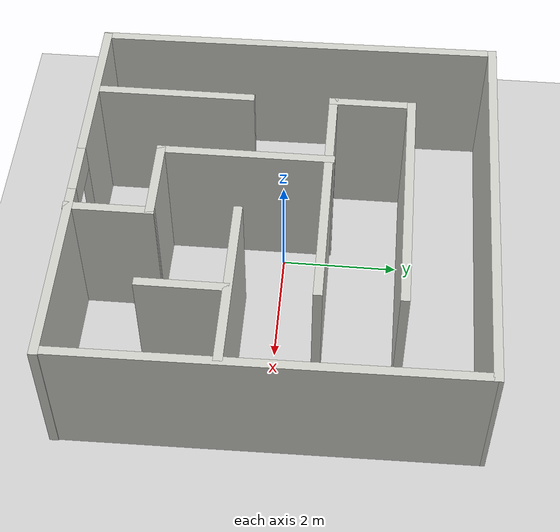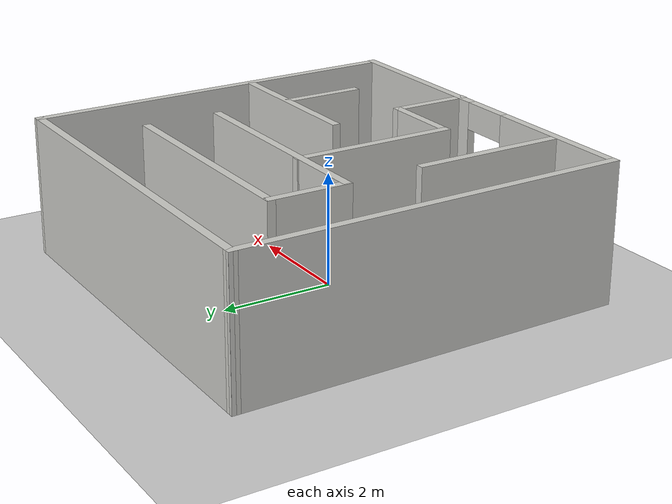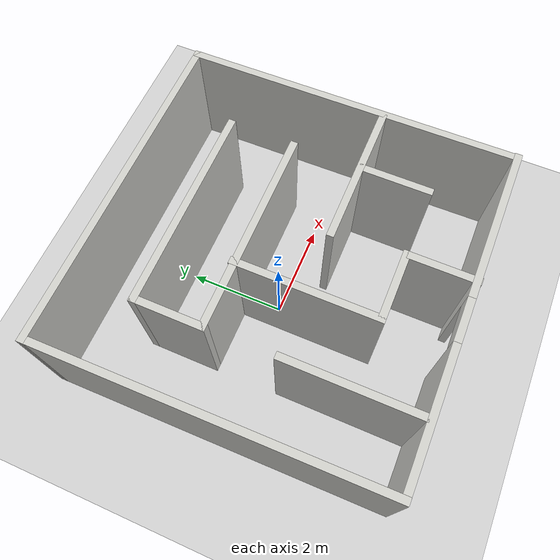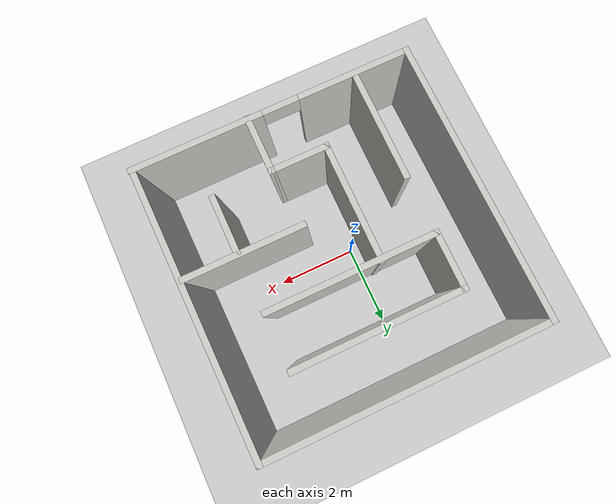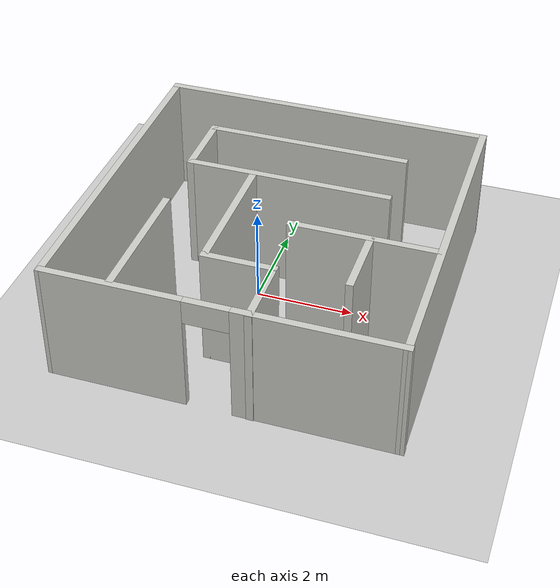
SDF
<sdf version="1.7">
 <world name="default">
  <light name="sun" type="directional">
   <pose>0 0 10 0 -0 0</pose>
   <diffuse>0.8 0.8 0.8 1</diffuse>
   <specular>0.2 0.2 0.2 1</specular>
   <attenuation>
    <range>1000</range>
    <constant>0.9</constant>
    <linear>0.01</linear>
    <quadratic>0.001</quadratic>
   </attenuation>
   <direction>-0.5 0.1 -0.9</direction>
   <spot><inner_angle>0</inner_angle><outer_angle>0</outer_angle><falloff>0</falloff></spot>
  </light>
  <model name="ground_plane">
   <static>1</static>
   <link name="link">
    <collision name="collision">
     <geometry><plane><normal>0 0 1</normal><size>100 100</size></plane></geometry>
     <surface>
      <contact><collide_bitmask>65535</collide_bitmask></contact>
      <friction><ode><mu>100</mu><mu2>50</mu2></ode></friction>
     </surface>
    </collision>
    <visual name="visual">
     <cast_shadows>0</cast_shadows>
     <geometry><plane><normal>0 0 1</normal><size>100 100</size></plane></geometry>
     <material>
      <script><uri>file://media/materials/scripts/gazebo.material</uri><name>Gazebo/Grey</name></script>
     </material>
    </visual>
   </link>
  </model>
  <gravity>0 0 -9.8</gravity>
  <magnetic_field>6e-06 2.3e-05 -4.2e-05</magnetic_field>
  <atmosphere type="adiabatic"/>
  <physics type="ode">
   <max_step_size>0.001</max_step_size>
   <real_time_factor>1</real_time_factor>
   <real_time_update_rate>1000</real_time_update_rate>
  </physics>
  <scene><ambient>0.4 0.4 0.4 1</ambient><background>0.7 0.7 0.7 1</background><shadows>1</shadows></scene>
  <audio><device>default</device></audio>
  <spherical_coordinates>
   <surface_model>EARTH_WGS84</surface_model>
   <latitude_deg>0</latitude_deg>
   <longitude_deg>0</longitude_deg>
   <elevation>0</elevation>
   <heading_deg>0</heading_deg>
  </spherical_coordinates>
  <model name="my_maze">
   <pose>0.402667 0.017077 0 0 -0 0</pose>
   <link name="Wall_0">
    <collision name="Wall_0_Collision">
     <geometry><box><size>7.06109 0.15 2.5</size></box></geometry>
     <pose>0 0 1.25 0 -0 0</pose>
    </collision>
    <visual name="Wall_0_Visual">
     <pose>0 0 1.25 0 -0 0</pose>
     <geometry><box><size>7.06109 0.15 2.5</size></box></geometry>
     <material>
      <script><uri>file://media/materials/scripts/gazebo.material</uri><name>Gazebo/CeilingTiled</name></script>
      <ambient>1 1 1 1</ambient>
     </material>
     <meta><layer>0</layer></meta>
    </visual>
    <pose>-3.43215 0.006476 0 0 -0 -1.55985</pose>
   </link>
   <link name="Wall_1">
    <pose>0.045777 -3.44877 0 0 -0 0</pose>
    <visual name="Wall_1_Visual_0">
     <pose>-2.0847 0 1.25 0 -0 0</pose>
     <geometry><box><size>2.8306 0.15 2.5</size></box></geometry>
     <material>
      <script><uri>file://media/materials/scripts/gazebo.material</uri><name>Gazebo/CeilingTiled</name></script>
      <ambient>1 1 1 1</ambient>
     </material>
     <meta><layer>0</layer></meta>
    </visual>
    <collision name="Wall_1_Collision_0">
     <geometry><box><size>2.8306 0.15 2.5</size></box></geometry>
     <pose>-2.0847 0 1.25 0 -0 0</pose>
    </collision>
    <visual name="Wall_1_Visual_1">
     <pose>1.8653 0 1.25 0 -0 0</pose>
     <geometry><box><size>3.2694 0.15 2.5</size></box></geometry>
     <material>
      <script><uri>file://media/materials/scripts/gazebo.material</uri><name>Gazebo/CeilingTiled</name></script>
      <ambient>1 1 1 1</ambient>
     </material>
     <meta><layer>0</layer></meta>
    </visual>
    <collision name="Wall_1_Collision_1">
     <geometry><box><size>3.2694 0.15 2.5</size></box></geometry>
     <pose>1.8653 0 1.25 0 -0 0</pose>
    </collision>
    <visual name="Wall_1_Visual_2">
     <pose>-0.219402 0 2.25 0 -0 0</pose>
     <geometry><box><size>0.9 0.15 0.5</size></box></geometry>
     <material>
      <script><uri>file://media/materials/scripts/gazebo.material</uri><name>Gazebo/CeilingTiled</name></script>
      <ambient>1 1 1 1</ambient>
     </material>
     <meta><layer>0</layer></meta>
    </visual>
    <collision name="Wall_1_Collision_2">
     <geometry><box><size>0.9 0.15 0.5</size></box></geometry>
     <pose>-0.219402 0 2.25 0 -0 0</pose>
    </collision>
   </link>
   <link name="Wall_10">
    <collision name="Wall_10_Collision">
     <geometry><box><size>4.25 0.15 2.5</size></box></geometry>
     <pose>0 0 1.25 0 -0 0</pose>
    </collision>
    <visual name="Wall_10_Visual">
     <pose>0 0 1.25 0 -0 0</pose>
     <geometry><box><size>4.25 0.15 2.5</size></box></geometry>
     <material>
      <script><uri>file://media/materials/scripts/gazebo.material</uri><name>Gazebo/CeilingTiled</name></script>
      <ambient>1 1 1 1</ambient>
     </material>
     <meta><layer>0</layer></meta>
    </visual>
    <pose>-0.01836 0.709871 0 0 -0 0</pose>
   </link>
   <link name="Wall_12">
    <collision name="Wall_12_Collision">
     <geometry><box><size>3 0.15 2.5</size></box></geometry>
     <pose>0 0 1.25 0 -0 0</pose>
    </collision>
    <visual name="Wall_12_Visual">
     <pose>0 0 1.25 0 -0 0</pose>
     <geometry><box><size>3 0.15 2.5</size></box></geometry>
     <material>
      <script><uri>file://media/materials/scripts/gazebo.material</uri><name>Gazebo/CeilingTiled</name></script>
      <ambient>1 1 1 1</ambient>
     </material>
     <meta><layer>0</layer></meta>
    </visual>
    <pose>-0.71916 -0.687629 0 0 -0 -1.5708</pose>
   </link>
   <link name="Wall_13">
    <collision name="Wall_13_Collision">
     <geometry><box><size>1.5 0.15 2.5</size></box></geometry>
     <pose>0 0 1.25 0 -0 0</pose>
    </collision>
    <visual name="Wall_13_Visual">
     <pose>0 0 1.25 0 -0 0</pose>
     <geometry><box><size>1.5 0.15 2.5</size></box></geometry>
     <material>
      <script><uri>file://media/materials/scripts/gazebo.material</uri><name>Gazebo/CeilingTiled</name></script>
      <ambient>1 1 1 1</ambient>
     </material>
     <meta><layer>0</layer></meta>
    </visual>
    <pose>-0.04416 -2.11263 0 0 -0 0</pose>
   </link>
   <link name="Wall_14">
    <collision name="Wall_14_Collision">
     <geometry><box><size>1.5 0.15 2.5</size></box></geometry>
     <pose>0 0 1.25 0 -0 0</pose>
    </collision>
    <visual name="Wall_14_Visual">
     <pose>0 0 1.25 0 -0 0</pose>
     <geometry><box><size>1.5 0.15 2.5</size></box></geometry>
     <material>
      <script><uri>file://media/materials/scripts/gazebo.material</uri><name>Gazebo/CeilingTiled</name></script>
      <ambient>1 1 1 1</ambient>
     </material>
     <meta><layer>0</layer></meta>
    </visual>
    <pose>0.63084 -2.78763 0 0 -0 -1.5708</pose>
   </link>
   <link name="Wall_16">
    <collision name="Wall_16_Collision">
     <geometry><box><size>3 0.15 2.5</size></box></geometry>
     <pose>0 0 1.25 0 -0 0</pose>
    </collision>
    <visual name="Wall_16_Visual">
     <pose>0 0 1.25 0 -0 0</pose>
     <geometry><box><size>3 0.15 2.5</size></box></geometry>
     <material>
      <script><uri>file://media/materials/scripts/gazebo.material</uri><name>Gazebo/CeilingTiled</name></script>
      <ambient>1 1 1 1</ambient>
     </material>
     <meta><layer>0</layer></meta>
    </visual>
    <pose>1.92914 -0.690929 0 0 -0 3.14159</pose>
   </link>
   <link name="Wall_19">
    <collision name="Wall_19_Collision">
     <geometry><box><size>1.5 0.15 2.5</size></box></geometry>
     <pose>0 0 1.25 0 -0 0</pose>
    </collision>
    <visual name="Wall_19_Visual">
     <pose>0 0 1.25 0 -0 0</pose>
     <geometry><box><size>1.5 0.15 2.5</size></box></geometry>
     <material>
      <script><uri>file://media/materials/scripts/gazebo.material</uri><name>Gazebo/CeilingTiled</name></script>
      <ambient>1 1 1 1</ambient>
     </material>
     <meta><layer>0</layer></meta>
    </visual>
    <pose>2.06456 -1.41436 0 0 -0 1.5708</pose>
   </link>
   <link name="Wall_2">
    <collision name="Wall_2_Collision">
     <geometry><box><size>7.06109 0.15 2.5</size></box></geometry>
     <pose>0 0 1.25 0 -0 0</pose>
    </collision>
    <visual name="Wall_2_Visual">
     <pose>0 0 1.25 0 -0 0</pose>
     <geometry><box><size>7.06109 0.15 2.5</size></box></geometry>
     <material>
      <script><uri>file://media/materials/scripts/gazebo.material</uri><name>Gazebo/CeilingTiled</name></script>
      <ambient>1 1 1 1</ambient>
     </material>
     <meta><layer>0</layer></meta>
    </visual>
    <pose>3.41785 0.006476 0 0 -0 1.58174</pose>
   </link>
   <link name="Wall_3">
    <collision name="Wall_3_Collision">
     <geometry><box><size>7 0.15 2.5</size></box></geometry>
     <pose>0 0 1.25 0 -0 0</pose>
    </collision>
    <visual name="Wall_3_Visual">
     <pose>0 0 1.25 0 -0 0</pose>
     <geometry><box><size>7 0.15 2.5</size></box></geometry>
     <material>
      <script><uri>file://media/materials/scripts/gazebo.material</uri><name>Gazebo/CeilingTiled</name></script>
      <ambient>1 1 1 1</ambient>
     </material>
     <meta><layer>0</layer></meta>
    </visual>
    <pose>-0.04496 3.46172 0 0 -0 3.14159</pose>
   </link>
   <link name="Wall_6">
    <collision name="Wall_6_Collision">
     <geometry><box><size>2.75 0.15 2.5</size></box></geometry>
     <pose>0 0 1.25 0 -0 0</pose>
    </collision>
    <visual name="Wall_6_Visual">
     <pose>0 0 1.25 0 -0 0</pose>
     <geometry><box><size>2.75 0.15 2.5</size></box></geometry>
     <material>
      <script><uri>file://media/materials/scripts/gazebo.material</uri><name>Gazebo/CeilingTiled</name></script>
      <ambient>1 1 1 1</ambient>
     </material>
     <meta><layer>0</layer></meta>
    </visual>
    <pose>-2.04166 -2.03593 0 0 -0 1.5708</pose>
   </link>
   <link name="Wall_8">
    <collision name="Wall_8_Collision">
     <geometry><box><size>4.25 0.15 2.5</size></box></geometry>
     <pose>0 0 1.25 0 -0 0</pose>
    </collision>
    <visual name="Wall_8_Visual">
     <pose>0 0 1.25 0 -0 0</pose>
     <geometry><box><size>4.25 0.15 2.5</size></box></geometry>
     <material>
      <script><uri>file://media/materials/scripts/gazebo.material</uri><name>Gazebo/CeilingTiled</name></script>
      <ambient>1 1 1 1</ambient>
     </material>
     <meta><layer>0</layer></meta>
    </visual>
    <pose>-0.01836 2.05987 0 0 -0 3.14159</pose>
   </link>
   <link name="Wall_9">
    <collision name="Wall_9_Collision">
     <geometry><box><size>1.5 0.15 2.5</size></box></geometry>
     <pose>0 0 1.25 0 -0 0</pose>
    </collision>
    <visual name="Wall_9_Visual">
     <pose>0 0 1.25 0 -0 0</pose>
     <geometry><box><size>1.5 0.15 2.5</size></box></geometry>
     <material>
      <script><uri>file://media/materials/scripts/gazebo.material</uri><name>Gazebo/CeilingTiled</name></script>
      <ambient>1 1 1 1</ambient>
     </material>
     <meta><layer>0</layer></meta>
    </visual>
    <pose>-2.06836 1.38487 0 0 -0 -1.5708</pose>
   </link>
   <static>1</static>
  </model>
 </world>
</sdf>
